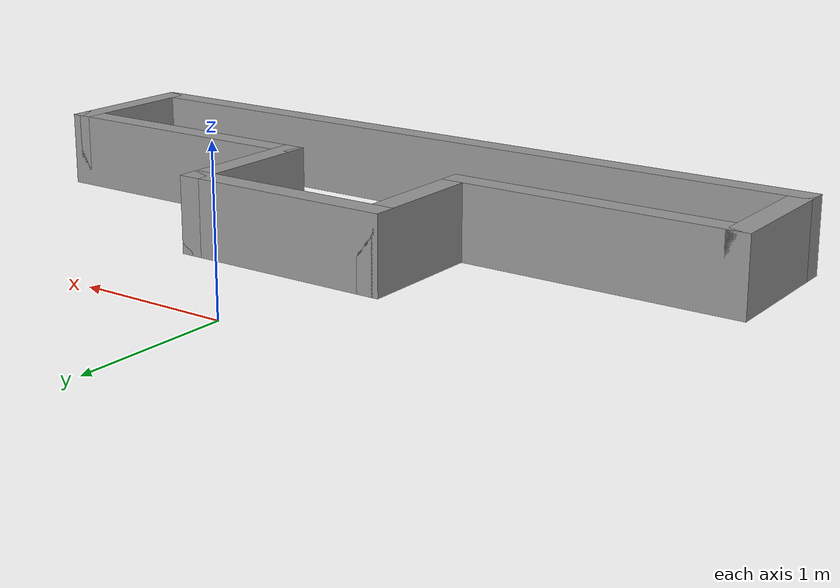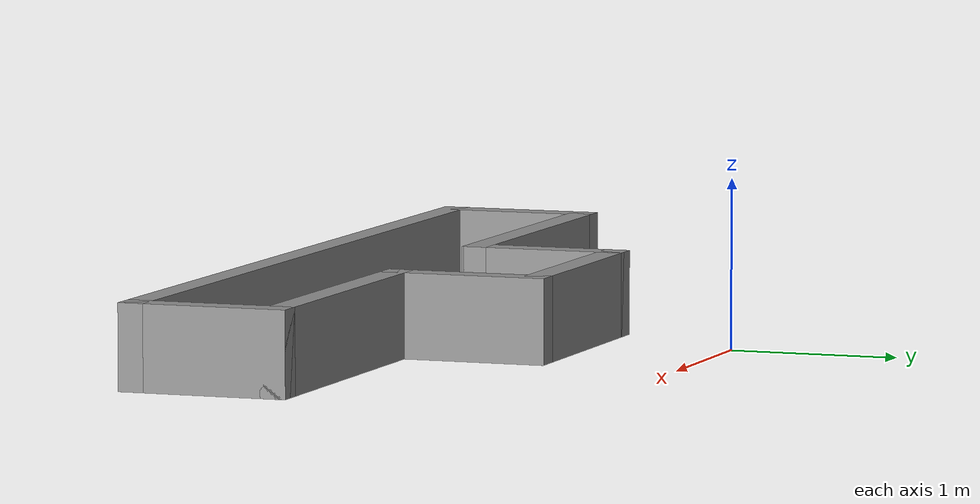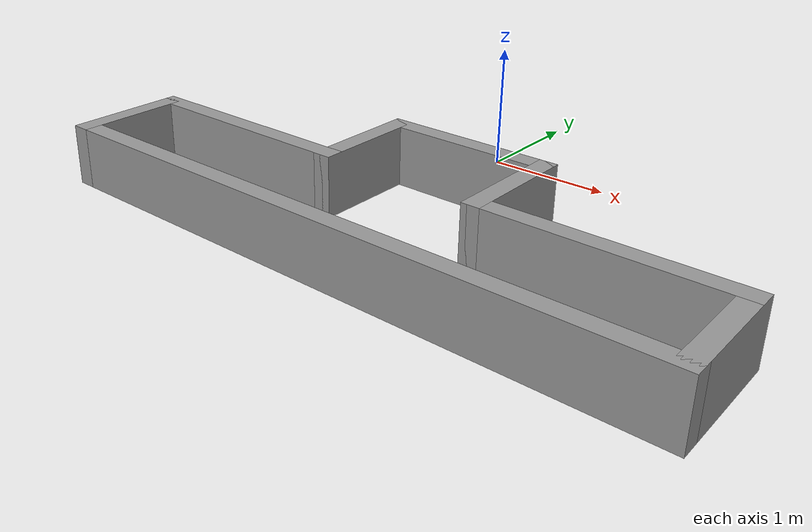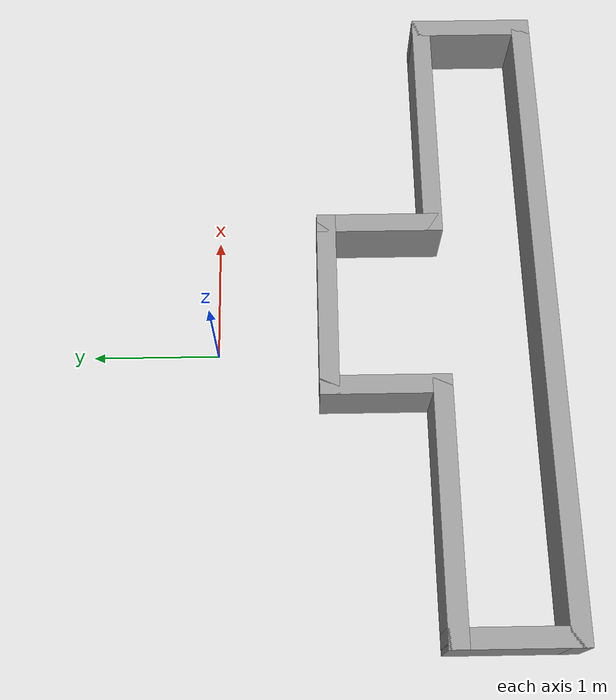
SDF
<?xml version='1.0'?>
<sdf version='1.6'>
  <model name='Map11'>
    <pose frame=''>0.265 -1.72 0 0 -0 0</pose>
    <link name='Wall_0'>
      <collision name='Wall_0_Collision'>
        <geometry>
          <box>
            <size>2 0.15 0.5</size>
          </box>
        </geometry>
        <pose frame=''>0 0 0.25 0 -0 0</pose>
      </collision>
      <visual name='Wall_0_Visual'>
        <pose frame=''>0 0 0.25 0 -0 0</pose>
        <geometry>
          <box>
            <size>2 0.15 0.5</size>
          </box>
        </geometry>
        <material>
          <script>
            <uri>file://media/materials/scripts/gazebo.material</uri>
            <name>Gazebo/Grey</name>
          </script>
          <ambient>1 1 1 1</ambient>
        </material>
      </visual>
      <pose frame=''>-1.6 0 0 0 -0 0</pose>
    </link>
    <link name='Wall_1'>
      <collision name='Wall_1_Collision'>
        <geometry>
          <box>
            <size>1 0.15 0.5</size>
          </box>
        </geometry>
        <pose frame=''>0 0 0.25 0 -0 0</pose>
      </collision>
      <visual name='Wall_1_Visual'>
        <pose frame=''>0 0 0.25 0 -0 0</pose>
        <geometry>
          <box>
            <size>1 0.15 0.5</size>
          </box>
        </geometry>
        <material>
          <script>
            <uri>file://media/materials/scripts/gazebo.material</uri>
            <name>Gazebo/Grey</name>
          </script>
          <ambient>1 1 1 1</ambient>
        </material>
      </visual>
      <pose frame=''>-0.675 0.425 0 0 -0 1.5708</pose>
    </link>
    <link name='Wall_2'>
      <collision name='Wall_2_Collision'>
        <geometry>
          <box>
            <size>1.5 0.15 0.5</size>
          </box>
        </geometry>
        <pose frame=''>0 0 0.25 0 -0 0</pose>
      </collision>
      <visual name='Wall_2_Visual'>
        <pose frame=''>0 0 0.25 0 -0 0</pose>
        <geometry>
          <box>
            <size>1.5 0.15 0.5</size>
          </box>
        </geometry>
        <material>
          <script>
            <uri>file://media/materials/scripts/gazebo.material</uri>
            <name>Gazebo/Grey</name>
          </script>
          <ambient>1 1 1 1</ambient>
        </material>
      </visual>
      <pose frame=''>0 0.85 0 0 -0 0</pose>
    </link>
    <link name='Wall_3'>
      <collision name='Wall_3_Collision'>
        <geometry>
          <box>
            <size>1 0.15 0.5</size>
          </box>
        </geometry>
        <pose frame=''>0 0 0.25 0 -0 0</pose>
      </collision>
      <visual name='Wall_3_Visual'>
        <pose frame=''>0 0 0.25 0 -0 0</pose>
        <geometry>
          <box>
            <size>1 0.15 0.5</size>
          </box>
        </geometry>
        <material>
          <script>
            <uri>file://media/materials/scripts/gazebo.material</uri>
            <name>Gazebo/Grey</name>
          </script>
          <ambient>1 1 1 1</ambient>
        </material>
      </visual>
      <pose frame=''>0.675 0.425 0 0 0 -1.5708</pose>
    </link>
    <link name='Wall_4'>
      <collision name='Wall_4_Collision'>
        <geometry>
          <box>
            <size>2 0.15 0.5</size>
          </box>
        </geometry>
        <pose frame=''>0 0 0.25 0 -0 0</pose>
      </collision>
      <visual name='Wall_4_Visual'>
        <pose frame=''>0 0 0.25 0 -0 0</pose>
        <geometry>
          <box>
            <size>2 0.15 0.5</size>
          </box>
        </geometry>
        <material>
          <script>
            <uri>file://media/materials/scripts/gazebo.material</uri>
            <name>Gazebo/Grey</name>
          </script>
          <ambient>1 1 1 1</ambient>
        </material>
      </visual>
      <pose frame=''>1.6 0 0 0 -0 0</pose>
    </link>
    <link name='Wall_5'>
      <collision name='Wall_5_Collision'>
        <geometry>
          <box>
            <size>1 0.15 0.5</size>
          </box>
        </geometry>
        <pose frame=''>0 0 0.25 0 -0 0</pose>
      </collision>
      <visual name='Wall_5_Visual'>
        <pose frame=''>0 0 0.25 0 -0 0</pose>
        <geometry>
          <box>
            <size>1 0.15 0.5</size>
          </box>
        </geometry>
        <material>
          <script>
            <uri>file://media/materials/scripts/gazebo.material</uri>
            <name>Gazebo/Grey</name>
          </script>
          <ambient>1 1 1 1</ambient>
        </material>
      </visual>
      <pose frame=''>2.525 -0.425 0 0 0 -1.5708</pose>
    </link>
    <link name='Wall_6'>
      <collision name='Wall_6_Collision'>
        <geometry>
          <box>
            <size>5.2 0.15 0.5</size>
          </box>
        </geometry>
        <pose frame=''>0 0 0.25 0 -0 0</pose>
      </collision>
      <visual name='Wall_6_Visual'>
        <pose frame=''>0 0 0.25 0 -0 0</pose>
        <geometry>
          <box>
            <size>5.2 0.15 0.5</size>
          </box>
        </geometry>
        <material>
          <script>
            <uri>file://media/materials/scripts/gazebo.material</uri>
            <name>Gazebo/Grey</name>
          </script>
          <ambient>1 1 1 1</ambient>
        </material>
      </visual>
      <pose frame=''>0 -0.85 0 0 -0 3.14159</pose>
    </link>
    <link name='Wall_7'>
      <collision name='Wall_7_Collision'>
        <geometry>
          <box>
            <size>1 0.15 0.5</size>
          </box>
        </geometry>
        <pose frame=''>0 0 0.25 0 -0 0</pose>
      </collision>
      <visual name='Wall_7_Visual'>
        <pose frame=''>0 0 0.25 0 -0 0</pose>
        <geometry>
          <box>
            <size>1 0.15 0.5</size>
          </box>
        </geometry>
        <material>
          <script>
            <uri>file://media/materials/scripts/gazebo.material</uri>
            <name>Gazebo/Grey</name>
          </script>
          <ambient>1 1 1 1</ambient>
        </material>
      </visual>
      <pose frame=''>-2.525 -0.425 0 0 -0 1.5708</pose>
    </link>
    <static>1</static>
  </model>
</sdf>
